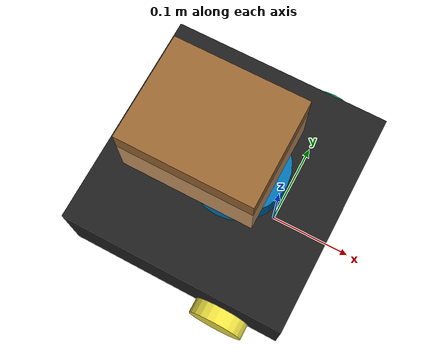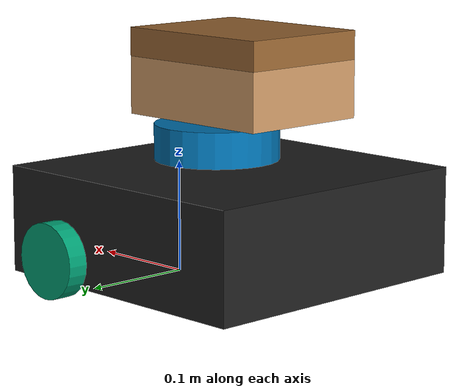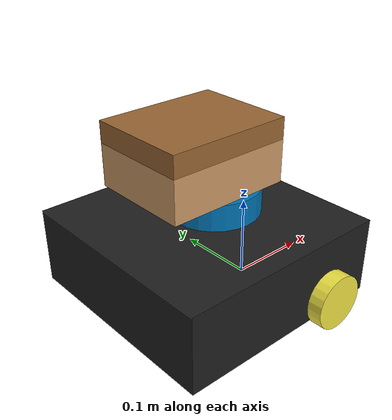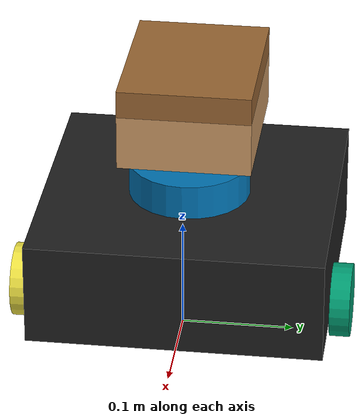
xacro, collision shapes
<?xml version="1.0" ?>
<robot name="turtlebot3_waffle_pi" xmlns:xacro="http://www.ros.org/wiki/xacro">

  <!-- Include common properties -->
  <xacro:include filename="$(find turtlebot3_description)/urdf/common_properties.urdf"/>

  <!-- Base footprint -->
  <link name="base_footprint"/>

  <!-- Base link -->
  <joint name="base_joint" type="fixed">
    <parent link="base_footprint"/>
    <child link="base_link" />
    <origin xyz="0 0 0.010" rpy="0 0 0"/>
  </joint>

  <link name="base_link">
    <visual>
      <origin xyz="-0.064 0 0.048" rpy="0 0 0"/>
      <geometry>
        <mesh filename="package://turtlebot3_description/meshes/bases/waffle_pi_base.stl" scale="0.001 0.001 0.001"/>
      </geometry>
      <material name="light_black"/>
    </visual>
    <collision>
      <origin xyz="-0.064 0 0.047" rpy="0 0 0"/>
      <geometry>
        <box size="0.266 0.266 0.094"/>
      </geometry>
    </collision>
    <inertial>
      <origin xyz="0 0 0" rpy="0 0 0"/>
      <mass value="1.3729096e+00"/>
      <inertia ixx="8.7002718e-03" ixy="-4.7576583e-05" ixz="1.1160499e-04"
               iyy="8.6195418e-03" iyz="-3.5422299e-06"
               izz="1.4612727e-02" />
    </inertial>
  </link>

  <!-- Wheels -->
  <joint name="wheel_left_joint" type="continuous">
    <parent link="base_link"/>
    <child link="wheel_left_link"/>
    <origin xyz="0.0 0.144 0.023" rpy="-1.57 0 0"/>
    <axis xyz="0 0 1"/>
  </joint>

  <link name="wheel_left_link">
    <visual>
      <origin xyz="0 0 0" rpy="1.57 0 0"/>
      <geometry>
        <mesh filename="package://turtlebot3_description/meshes/wheels/left_tire.stl" scale="0.001 0.001 0.001"/>
      </geometry>
      <material name="dark"/>
    </visual>
    <collision>
      <origin xyz="0 0 0" rpy="0 0 0"/>
      <geometry>
        <cylinder length="0.018" radius="0.033"/>
      </geometry>
    </collision>
    <inertial>
      <origin xyz="0 0 0" />
      <mass value="2.8498940e-02" />
      <inertia ixx="1.1175580e-05" ixy="-4.2369783e-11" ixz="-5.9381719e-09"
               iyy="1.1192413e-05" iyz="-1.4400107e-11" izz="2.0712558e-05" />
    </inertial>
  </link>

  <joint name="wheel_right_joint" type="continuous">
    <parent link="base_link"/>
    <child link="wheel_right_link"/>
    <origin xyz="0.0 -0.144 0.023" rpy="-1.57 0 0"/>
    <axis xyz="0 0 1"/>
  </joint>

  <link name="wheel_right_link">
    <visual>
      <origin xyz="0 0 0" rpy="1.57 0 0"/>
      <geometry>
        <mesh filename="package://turtlebot3_description/meshes/wheels/right_tire.stl" scale="0.001 0.001 0.001"/>
      </geometry>
      <material name="dark"/>
    </visual>
    <collision>
      <origin xyz="0 0 0" rpy="0 0 0"/>
      <geometry>
        <cylinder length="0.018" radius="0.033"/>
      </geometry>
    </collision>
    <inertial>
      <origin xyz="0 0 0" />
      <mass value="2.8498940e-02" />
      <inertia ixx="1.1175580e-05" ixy="-4.2369783e-11" ixz="-5.9381719e-09"
               iyy="1.1192413e-05" iyz="-1.4400107e-11" izz="2.0712558e-05" />
    </inertial>
  </link>

  <!-- LiDAR -->
  <joint name="lidar_joint" type="fixed">
    <parent link="base_link"/>
    <child link="base_scan"/>
    <origin xyz="-0.064 0 0.121" rpy="0 0 0"/>
  </joint>

  <link name="base_scan">
    <visual>
      <origin xyz="0 0 0" rpy="0 0 0"/>
      <geometry>
        <mesh filename="package://turtlebot3_description/meshes/sensors/lds.stl" scale="0.001 0.001 0.001"/>
      </geometry>
      <material name="dark"/>
    </visual>
    <collision>
      <origin xyz="0.015 0 -0.0065" rpy="0 0 0"/>
      <geometry>
        <cylinder length="0.0315" radius="0.055"/>
      </geometry>
    </collision>
    <inertial>
      <mass value="0.114" />
      <origin xyz="0 0 0" />
      <inertia ixx="0.001" ixy="0.0" ixz="0.0" iyy="0.001" iyz="0.0" izz="0.001" />
    </inertial>
  </link>

  <!-- Storage Box with Lid -->
  <joint name="storage_box_joint" type="fixed">
    <origin xyz="-0.08 0 0.14" rpy="0 0 0"/>
    <parent link="base_link"/>
    <child link="storage_box_link"/>
  </joint>

  <link name="storage_box_link">
    <visual>
      <origin xyz="0 0 0.025" rpy="0 0 0"/>
      <geometry>
        <box size="0.15 0.12 0.05"/>
      </geometry>
      <material name="brown">
        <color rgba="0.8 0.6 0.4 1.0"/>
      </material>
    </visual>
    <collision>
      <origin xyz="0 0 0.025" rpy="0 0 0"/>
      <geometry>
        <box size="0.15 0.12 0.05"/>
      </geometry>
    </collision>
    <inertial>
      <origin xyz="0 0 0.025" rpy="0 0 0"/>
      <mass value="0.2"/>
      <inertia ixx="0.0004" ixy="0" ixz="0" iyy="0.0005" iyz="0" izz="0.0006"/>
    </inertial>
  </link>

  <!-- Hinged Lid -->
  <joint name="lid_joint" type="revolute">
    <origin xyz="-0.075 0 0.05" rpy="0 0 0"/>
    <parent link="storage_box_link"/>
    <child link="lid_link"/>
    <axis xyz="0 1 0"/>
    <limit lower="0" upper="1.5708" effort="10" velocity="1.0"/>
    <dynamics damping="0.1" friction="0.01"/>
  </joint>

  <link name="lid_link">
    <visual>
      <origin xyz="0.075 0 0.0125" rpy="0 0 0"/>
      <geometry>
        <box size="0.15 0.12 0.025"/>
      </geometry>
      <material name="dark_brown">
        <color rgba="0.6 0.4 0.2 1.0"/>
      </material>
    </visual>
    <collision>
      <origin xyz="0.075 0 0.0125" rpy="0 0 0"/>
      <geometry>
        <box size="0.15 0.12 0.025"/>
      </geometry>
    </collision>
    <inertial>
      <origin xyz="0.075 0 0.0125" rpy="0 0 0"/>
      <mass value="0.1"/>
      <inertia ixx="0.0002" ixy="0" ixz="0" iyy="0.0003" iyz="0" izz="0.0003"/>
    </inertial>
  </link>

  <!-- Gazebo materials -->
  <gazebo reference="storage_box_link">
    <material>Gazebo/Wood</material>
  </gazebo>

  <gazebo reference="lid_link">
    <material>Gazebo/WoodPallet</material>
  </gazebo>

  <!-- Gazebo differential drive plugin -->
  <gazebo>
    <plugin name="turtlebot3_diff_drive" filename="libgazebo_ros_diff_drive.so">
      <ros>
        <namespace>/</namespace>
        <remapping>cmd_vel:=cmd_vel</remapping>
        <remapping>odom:=odom</remapping>
      </ros>
      <update_rate>30</update_rate>
      <left_joint>wheel_left_joint</left_joint>
      <right_joint>wheel_right_joint</right_joint>
      <wheel_separation>0.287</wheel_separation>
      <wheel_diameter>0.066</wheel_diameter>
      <max_wheel_torque>20</max_wheel_torque>
      <max_wheel_acceleration>1.0</max_wheel_acceleration>
      <command_topic>cmd_vel</command_topic>
      <publish_odom>true</publish_odom>
      <publish_odom_tf>true</publish_odom_tf>
      <publish_wheel_tf>false</publish_wheel_tf>
      <odometry_topic>odom</odometry_topic>
      <odometry_frame>odom</odometry_frame>
      <robot_base_frame>base_footprint</robot_base_frame>
    </plugin>
  </gazebo>

  <!-- ROS2 Control for lid -->
  <ros2_control name="GazeboSystem" type="system">
    <hardware>
      <plugin>gazebo_ros2_control/GazeboSystem</plugin>
    </hardware>
    <joint name="lid_joint">
      <command_interface name="position">
        <param name="min">0</param>
        <param name="max">1.5708</param>
      </command_interface>
      <state_interface name="position"/>
    </joint>
  </ros2_control>

  <gazebo>
    <plugin filename="libgazebo_ros2_control.so" name="gazebo_ros2_control">
      <parameters>$(find lid_control)/config/lid_controllers.yaml</parameters>
    </plugin>
  </gazebo>

</robot>
